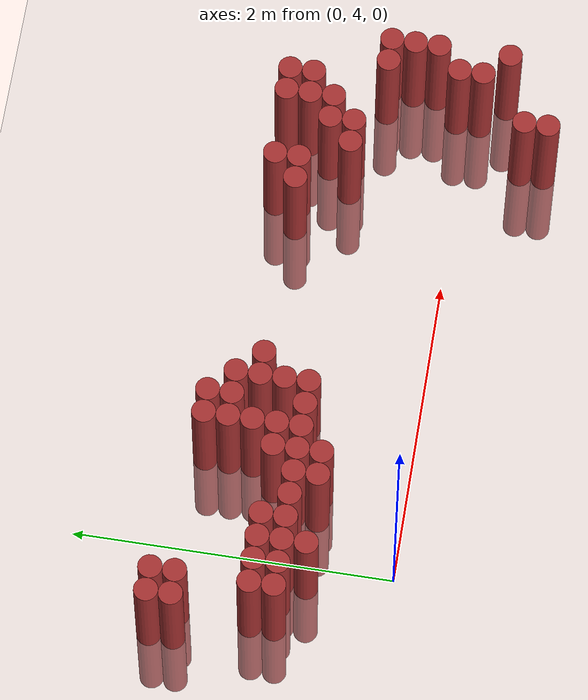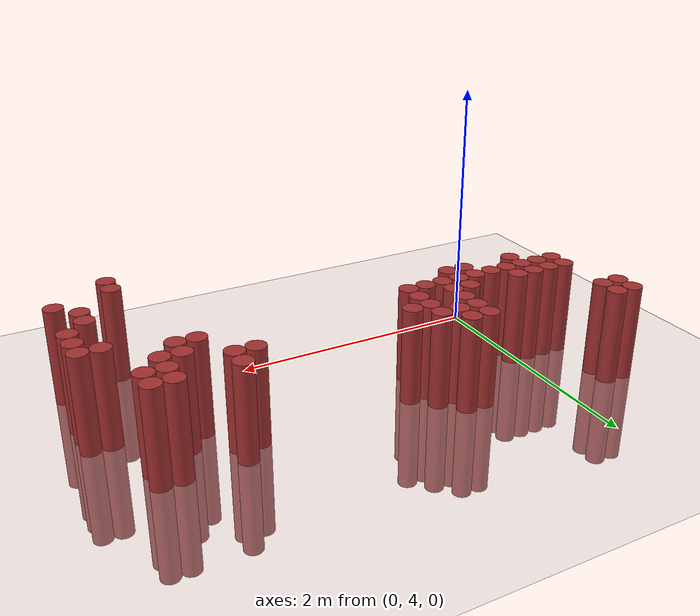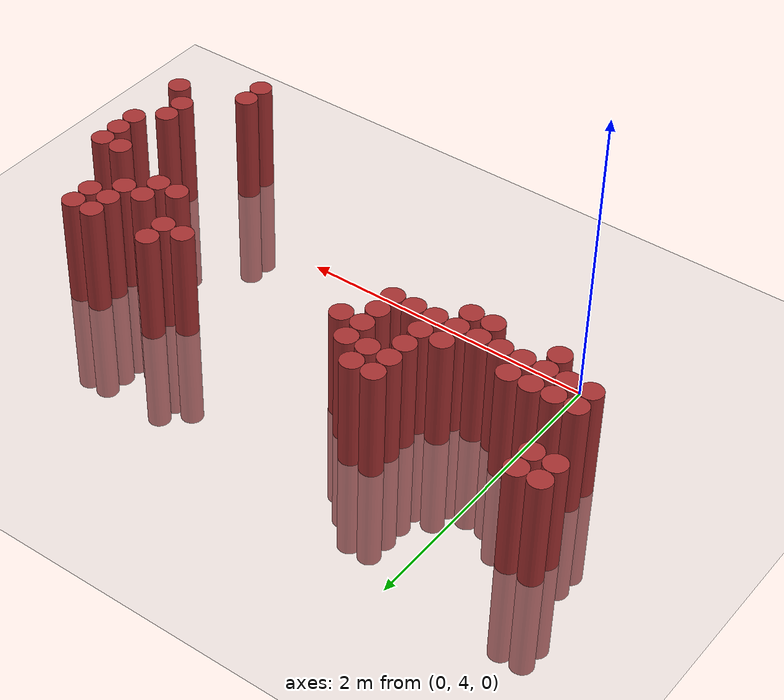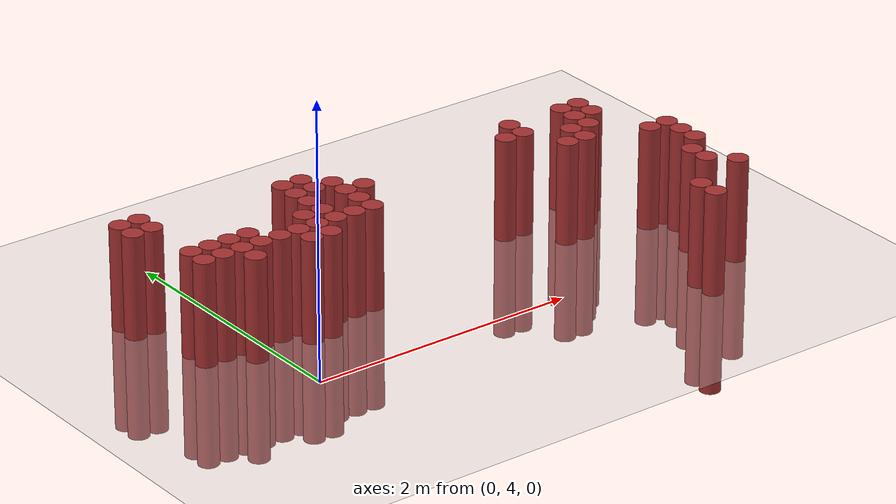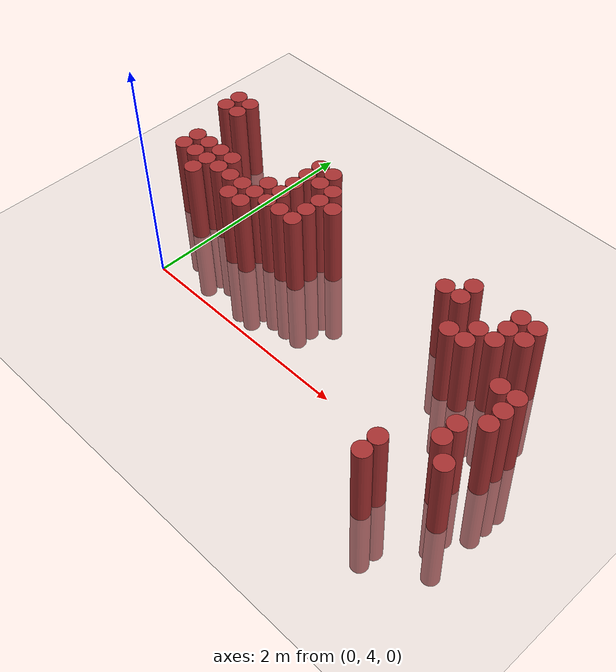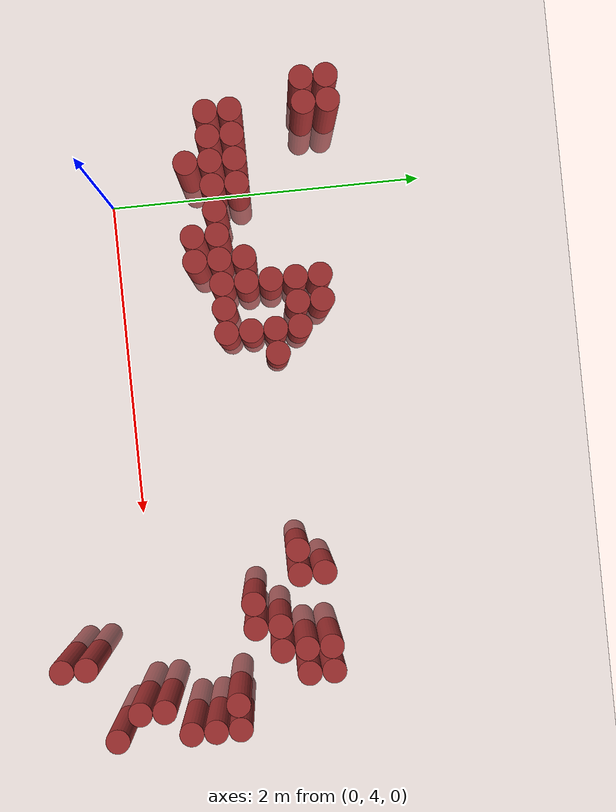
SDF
<sdf version="1.6">
 <world name="default">
  <model name="ground_plane">
   <static>1</static>
   <link name="link">
    <collision name="collision">
     <geometry><plane><normal>0 0 1</normal><size>100 100</size></plane></geometry>
     <surface><friction><ode><mu>100</mu><mu2>50</mu2></ode></friction></surface>
    </collision>
    <visual name="visual">
     <cast_shadows>0</cast_shadows>
     <geometry><plane><normal>0 0 1</normal><size>100 100</size></plane></geometry>
     <material>
      <script><uri>file://media/materials/scripts/gazebo.material</uri><name>Gazebo/Grey</name></script>
     </material>
    </visual>
   </link>
  </model>
  <model name="unit_cylinder_396">
   <static>1</static>
   <pose>-0.575000 5.275000 0.000000 0.000000 0.000000 0.000000</pose>
   <link name="link">
    <inertial>
     <mass>1</mass>
     <inertia><ixx>0.145833</ixx><ixy>0</ixy><ixz>0</ixz><iyy>0.145833</iyy><iyz>0</iyz><izz>0.125</izz></inertia>
    </inertial>
    <collision name="collision">
     <geometry><cylinder><radius>0.075000</radius><length>1.5</length></cylinder></geometry>
    </collision>
    <visual name="visual">
     <geometry><cylinder><radius>0.075000</radius><length>1.5</length></cylinder></geometry>
     <material>
      <ambient>0.648000 0.192000 0.192000 1</ambient>
      <diffuse>0.648000 0.192000 0.192000 1</diffuse>
     </material>
     <material>
      <script><name>Gazebo/Grey</name><uri>file://media/materials/scripts/gazebo.material</uri></script>
     </material>
    </visual>
   </link>
  </model>
  <model name="unit_cylinder_397">
   <static>1</static>
   <pose>-0.575000 5.425000 0.000000 0.000000 0.000000 0.000000</pose>
   <link name="link">
    <inertial>
     <mass>1</mass>
     <inertia><ixx>0.145833</ixx><ixy>0</ixy><ixz>0</ixz><iyy>0.145833</iyy><iyz>0</iyz><izz>0.125</izz></inertia>
    </inertial>
    <collision name="collision">
     <geometry><cylinder><radius>0.075000</radius><length>1.5</length></cylinder></geometry>
    </collision>
    <visual name="visual">
     <geometry><cylinder><radius>0.075000</radius><length>1.5</length></cylinder></geometry>
     <material>
      <ambient>0.648000 0.192000 0.192000 1</ambient>
      <diffuse>0.648000 0.192000 0.192000 1</diffuse>
     </material>
     <material>
      <script><name>Gazebo/Grey</name><uri>file://media/materials/scripts/gazebo.material</uri></script>
     </material>
    </visual>
   </link>
  </model>
  <model name="unit_cylinder_398">
   <static>1</static>
   <pose>-0.425000 4.675000 0.000000 0.000000 0.000000 0.000000</pose>
   <link name="link">
    <inertial>
     <mass>1</mass>
     <inertia><ixx>0.145833</ixx><ixy>0</ixy><ixz>0</ixz><iyy>0.145833</iyy><iyz>0</iyz><izz>0.125</izz></inertia>
    </inertial>
    <collision name="collision">
     <geometry><cylinder><radius>0.075000</radius><length>1.5</length></cylinder></geometry>
    </collision>
    <visual name="visual">
     <geometry><cylinder><radius>0.075000</radius><length>1.5</length></cylinder></geometry>
     <material>
      <ambient>0.648000 0.192000 0.192000 1</ambient>
      <diffuse>0.648000 0.192000 0.192000 1</diffuse>
     </material>
     <material>
      <script><name>Gazebo/Grey</name><uri>file://media/materials/scripts/gazebo.material</uri></script>
     </material>
    </visual>
   </link>
  </model>
  <model name="unit_cylinder_399">
   <static>1</static>
   <pose>-0.425000 4.825000 0.000000 0.000000 0.000000 0.000000</pose>
   <link name="link">
    <inertial>
     <mass>1</mass>
     <inertia><ixx>0.145833</ixx><ixy>0</ixy><ixz>0</ixz><iyy>0.145833</iyy><iyz>0</iyz><izz>0.125</izz></inertia>
    </inertial>
    <collision name="collision">
     <geometry><cylinder><radius>0.075000</radius><length>1.5</length></cylinder></geometry>
    </collision>
    <visual name="visual">
     <geometry><cylinder><radius>0.075000</radius><length>1.5</length></cylinder></geometry>
     <material>
      <ambient>0.648000 0.192000 0.192000 1</ambient>
      <diffuse>0.648000 0.192000 0.192000 1</diffuse>
     </material>
     <material>
      <script><name>Gazebo/Grey</name><uri>file://media/materials/scripts/gazebo.material</uri></script>
     </material>
    </visual>
   </link>
  </model>
  <model name="unit_cylinder_400">
   <static>1</static>
   <pose>-0.425000 5.275000 0.000000 0.000000 0.000000 0.000000</pose>
   <link name="link">
    <inertial>
     <mass>1</mass>
     <inertia><ixx>0.145833</ixx><ixy>0</ixy><ixz>0</ixz><iyy>0.145833</iyy><iyz>0</iyz><izz>0.125</izz></inertia>
    </inertial>
    <collision name="collision">
     <geometry><cylinder><radius>0.075000</radius><length>1.5</length></cylinder></geometry>
    </collision>
    <visual name="visual">
     <geometry><cylinder><radius>0.075000</radius><length>1.5</length></cylinder></geometry>
     <material>
      <ambient>0.648000 0.192000 0.192000 1</ambient>
      <diffuse>0.648000 0.192000 0.192000 1</diffuse>
     </material>
     <material>
      <script><name>Gazebo/Grey</name><uri>file://media/materials/scripts/gazebo.material</uri></script>
     </material>
    </visual>
   </link>
  </model>
  <model name="unit_cylinder_401">
   <static>1</static>
   <pose>-0.425000 5.425000 0.000000 0.000000 0.000000 0.000000</pose>
   <link name="link">
    <inertial>
     <mass>1</mass>
     <inertia><ixx>0.145833</ixx><ixy>0</ixy><ixz>0</ixz><iyy>0.145833</iyy><iyz>0</iyz><izz>0.125</izz></inertia>
    </inertial>
    <collision name="collision">
     <geometry><cylinder><radius>0.075000</radius><length>1.5</length></cylinder></geometry>
    </collision>
    <visual name="visual">
     <geometry><cylinder><radius>0.075000</radius><length>1.5</length></cylinder></geometry>
     <material>
      <ambient>0.648000 0.192000 0.192000 1</ambient>
      <diffuse>0.648000 0.192000 0.192000 1</diffuse>
     </material>
     <material>
      <script><name>Gazebo/Grey</name><uri>file://media/materials/scripts/gazebo.material</uri></script>
     </material>
    </visual>
   </link>
  </model>
  <model name="unit_cylinder_402">
   <static>1</static>
   <pose>-0.275000 4.675000 0.000000 0.000000 0.000000 0.000000</pose>
   <link name="link">
    <inertial>
     <mass>1</mass>
     <inertia><ixx>0.145833</ixx><ixy>0</ixy><ixz>0</ixz><iyy>0.145833</iyy><iyz>0</iyz><izz>0.125</izz></inertia>
    </inertial>
    <collision name="collision">
     <geometry><cylinder><radius>0.075000</radius><length>1.5</length></cylinder></geometry>
    </collision>
    <visual name="visual">
     <geometry><cylinder><radius>0.075000</radius><length>1.5</length></cylinder></geometry>
     <material>
      <ambient>0.648000 0.192000 0.192000 1</ambient>
      <diffuse>0.648000 0.192000 0.192000 1</diffuse>
     </material>
     <material>
      <script><name>Gazebo/Grey</name><uri>file://media/materials/scripts/gazebo.material</uri></script>
     </material>
    </visual>
   </link>
  </model>
  <model name="unit_cylinder_403">
   <static>1</static>
   <pose>-0.275000 4.825000 0.000000 0.000000 0.000000 0.000000</pose>
   <link name="link">
    <inertial>
     <mass>1</mass>
     <inertia><ixx>0.145833</ixx><ixy>0</ixy><ixz>0</ixz><iyy>0.145833</iyy><iyz>0</iyz><izz>0.125</izz></inertia>
    </inertial>
    <collision name="collision">
     <geometry><cylinder><radius>0.075000</radius><length>1.5</length></cylinder></geometry>
    </collision>
    <visual name="visual">
     <geometry><cylinder><radius>0.075000</radius><length>1.5</length></cylinder></geometry>
     <material>
      <ambient>0.648000 0.192000 0.192000 1</ambient>
      <diffuse>0.648000 0.192000 0.192000 1</diffuse>
     </material>
     <material>
      <script><name>Gazebo/Grey</name><uri>file://media/materials/scripts/gazebo.material</uri></script>
     </material>
    </visual>
   </link>
  </model>
  <model name="unit_cylinder_404">
   <static>1</static>
   <pose>-0.125000 4.525000 0.000000 0.000000 0.000000 0.000000</pose>
   <link name="link">
    <inertial>
     <mass>1</mass>
     <inertia><ixx>0.145833</ixx><ixy>0</ixy><ixz>0</ixz><iyy>0.145833</iyy><iyz>0</iyz><izz>0.125</izz></inertia>
    </inertial>
    <collision name="collision">
     <geometry><cylinder><radius>0.075000</radius><length>1.5</length></cylinder></geometry>
    </collision>
    <visual name="visual">
     <geometry><cylinder><radius>0.075000</radius><length>1.5</length></cylinder></geometry>
     <material>
      <ambient>0.648000 0.192000 0.192000 1</ambient>
      <diffuse>0.648000 0.192000 0.192000 1</diffuse>
     </material>
     <material>
      <script><name>Gazebo/Grey</name><uri>file://media/materials/scripts/gazebo.material</uri></script>
     </material>
    </visual>
   </link>
  </model>
  <model name="unit_cylinder_405">
   <static>1</static>
   <pose>-0.125000 4.675000 0.000000 0.000000 0.000000 0.000000</pose>
   <link name="link">
    <inertial>
     <mass>1</mass>
     <inertia><ixx>0.145833</ixx><ixy>0</ixy><ixz>0</ixz><iyy>0.145833</iyy><iyz>0</iyz><izz>0.125</izz></inertia>
    </inertial>
    <collision name="collision">
     <geometry><cylinder><radius>0.075000</radius><length>1.5</length></cylinder></geometry>
    </collision>
    <visual name="visual">
     <geometry><cylinder><radius>0.075000</radius><length>1.5</length></cylinder></geometry>
     <material>
      <ambient>0.648000 0.192000 0.192000 1</ambient>
      <diffuse>0.648000 0.192000 0.192000 1</diffuse>
     </material>
     <material>
      <script><name>Gazebo/Grey</name><uri>file://media/materials/scripts/gazebo.material</uri></script>
     </material>
    </visual>
   </link>
  </model>
  <model name="unit_cylinder_406">
   <static>1</static>
   <pose>-0.125000 4.825000 0.000000 0.000000 0.000000 0.000000</pose>
   <link name="link">
    <inertial>
     <mass>1</mass>
     <inertia><ixx>0.145833</ixx><ixy>0</ixy><ixz>0</ixz><iyy>0.145833</iyy><iyz>0</iyz><izz>0.125</izz></inertia>
    </inertial>
    <collision name="collision">
     <geometry><cylinder><radius>0.075000</radius><length>1.5</length></cylinder></geometry>
    </collision>
    <visual name="visual">
     <geometry><cylinder><radius>0.075000</radius><length>1.5</length></cylinder></geometry>
     <material>
      <ambient>0.648000 0.192000 0.192000 1</ambient>
      <diffuse>0.648000 0.192000 0.192000 1</diffuse>
     </material>
     <material>
      <script><name>Gazebo/Grey</name><uri>file://media/materials/scripts/gazebo.material</uri></script>
     </material>
    </visual>
   </link>
  </model>
  <model name="unit_cylinder_410">
   <static>1</static>
   <pose>0.025000 4.675000 0.000000 0.000000 0.000000 0.000000</pose>
   <link name="link">
    <inertial>
     <mass>1</mass>
     <inertia><ixx>0.145833</ixx><ixy>0</ixy><ixz>0</ixz><iyy>0.145833</iyy><iyz>0</iyz><izz>0.125</izz></inertia>
    </inertial>
    <collision name="collision">
     <geometry><cylinder><radius>0.075000</radius><length>1.5</length></cylinder></geometry>
    </collision>
    <visual name="visual">
     <geometry><cylinder><radius>0.075000</radius><length>1.5</length></cylinder></geometry>
     <material>
      <ambient>0.648000 0.192000 0.192000 1</ambient>
      <diffuse>0.648000 0.192000 0.192000 1</diffuse>
     </material>
     <material>
      <script><name>Gazebo/Grey</name><uri>file://media/materials/scripts/gazebo.material</uri></script>
     </material>
    </visual>
   </link>
  </model>
  <model name="unit_cylinder_411">
   <static>1</static>
   <pose>0.025000 4.825000 0.000000 0.000000 0.000000 0.000000</pose>
   <link name="link">
    <inertial>
     <mass>1</mass>
     <inertia><ixx>0.145833</ixx><ixy>0</ixy><ixz>0</ixz><iyy>0.145833</iyy><iyz>0</iyz><izz>0.125</izz></inertia>
    </inertial>
    <collision name="collision">
     <geometry><cylinder><radius>0.075000</radius><length>1.5</length></cylinder></geometry>
    </collision>
    <visual name="visual">
     <geometry><cylinder><radius>0.075000</radius><length>1.5</length></cylinder></geometry>
     <material>
      <ambient>0.648000 0.192000 0.192000 1</ambient>
      <diffuse>0.648000 0.192000 0.192000 1</diffuse>
     </material>
     <material>
      <script><name>Gazebo/Grey</name><uri>file://media/materials/scripts/gazebo.material</uri></script>
     </material>
    </visual>
   </link>
  </model>
  <model name="unit_cylinder_416">
   <static>1</static>
   <pose>0.175000 4.675000 0.000000 0.000000 0.000000 0.000000</pose>
   <link name="link">
    <inertial>
     <mass>1</mass>
     <inertia><ixx>0.145833</ixx><ixy>0</ixy><ixz>0</ixz><iyy>0.145833</iyy><iyz>0</iyz><izz>0.125</izz></inertia>
    </inertial>
    <collision name="collision">
     <geometry><cylinder><radius>0.075000</radius><length>1.5</length></cylinder></geometry>
    </collision>
    <visual name="visual">
     <geometry><cylinder><radius>0.075000</radius><length>1.5</length></cylinder></geometry>
     <material>
      <ambient>0.648000 0.192000 0.192000 1</ambient>
      <diffuse>0.648000 0.192000 0.192000 1</diffuse>
     </material>
     <material>
      <script><name>Gazebo/Grey</name><uri>file://media/materials/scripts/gazebo.material</uri></script>
     </material>
    </visual>
   </link>
  </model>
  <model name="unit_cylinder_421">
   <static>1</static>
   <pose>0.325000 4.525000 0.000000 0.000000 0.000000 0.000000</pose>
   <link name="link">
    <inertial>
     <mass>1</mass>
     <inertia><ixx>0.145833</ixx><ixy>0</ixy><ixz>0</ixz><iyy>0.145833</iyy><iyz>0</iyz><izz>0.125</izz></inertia>
    </inertial>
    <collision name="collision">
     <geometry><cylinder><radius>0.075000</radius><length>1.5</length></cylinder></geometry>
    </collision>
    <visual name="visual">
     <geometry><cylinder><radius>0.075000</radius><length>1.5</length></cylinder></geometry>
     <material>
      <ambient>0.648000 0.192000 0.192000 1</ambient>
      <diffuse>0.648000 0.192000 0.192000 1</diffuse>
     </material>
     <material>
      <script><name>Gazebo/Grey</name><uri>file://media/materials/scripts/gazebo.material</uri></script>
     </material>
    </visual>
   </link>
  </model>
  <model name="unit_cylinder_422">
   <static>1</static>
   <pose>0.325000 4.675000 0.000000 0.000000 0.000000 0.000000</pose>
   <link name="link">
    <inertial>
     <mass>1</mass>
     <inertia><ixx>0.145833</ixx><ixy>0</ixy><ixz>0</ixz><iyy>0.145833</iyy><iyz>0</iyz><izz>0.125</izz></inertia>
    </inertial>
    <collision name="collision">
     <geometry><cylinder><radius>0.075000</radius><length>1.5</length></cylinder></geometry>
    </collision>
    <visual name="visual">
     <geometry><cylinder><radius>0.075000</radius><length>1.5</length></cylinder></geometry>
     <material>
      <ambient>0.648000 0.192000 0.192000 1</ambient>
      <diffuse>0.648000 0.192000 0.192000 1</diffuse>
     </material>
     <material>
      <script><name>Gazebo/Grey</name><uri>file://media/materials/scripts/gazebo.material</uri></script>
     </material>
    </visual>
   </link>
  </model>
  <model name="unit_cylinder_429">
   <static>1</static>
   <pose>0.475000 4.525000 0.000000 0.000000 0.000000 0.000000</pose>
   <link name="link">
    <inertial>
     <mass>1</mass>
     <inertia><ixx>0.145833</ixx><ixy>0</ixy><ixz>0</ixz><iyy>0.145833</iyy><iyz>0</iyz><izz>0.125</izz></inertia>
    </inertial>
    <collision name="collision">
     <geometry><cylinder><radius>0.075000</radius><length>1.5</length></cylinder></geometry>
    </collision>
    <visual name="visual">
     <geometry><cylinder><radius>0.075000</radius><length>1.5</length></cylinder></geometry>
     <material>
      <ambient>0.648000 0.192000 0.192000 1</ambient>
      <diffuse>0.648000 0.192000 0.192000 1</diffuse>
     </material>
     <material>
      <script><name>Gazebo/Grey</name><uri>file://media/materials/scripts/gazebo.material</uri></script>
     </material>
    </visual>
   </link>
  </model>
  <model name="unit_cylinder_430">
   <static>1</static>
   <pose>0.475000 4.675000 0.000000 0.000000 0.000000 0.000000</pose>
   <link name="link">
    <inertial>
     <mass>1</mass>
     <inertia><ixx>0.145833</ixx><ixy>0</ixy><ixz>0</ixz><iyy>0.145833</iyy><iyz>0</iyz><izz>0.125</izz></inertia>
    </inertial>
    <collision name="collision">
     <geometry><cylinder><radius>0.075000</radius><length>1.5</length></cylinder></geometry>
    </collision>
    <visual name="visual">
     <geometry><cylinder><radius>0.075000</radius><length>1.5</length></cylinder></geometry>
     <material>
      <ambient>0.648000 0.192000 0.192000 1</ambient>
      <diffuse>0.648000 0.192000 0.192000 1</diffuse>
     </material>
     <material>
      <script><name>Gazebo/Grey</name><uri>file://media/materials/scripts/gazebo.material</uri></script>
     </material>
    </visual>
   </link>
  </model>
  <model name="unit_cylinder_431">
   <static>1</static>
   <pose>0.475000 4.825000 0.000000 0.000000 0.000000 0.000000</pose>
   <link name="link">
    <inertial>
     <mass>1</mass>
     <inertia><ixx>0.145833</ixx><ixy>0</ixy><ixz>0</ixz><iyy>0.145833</iyy><iyz>0</iyz><izz>0.125</izz></inertia>
    </inertial>
    <collision name="collision">
     <geometry><cylinder><radius>0.075000</radius><length>1.5</length></cylinder></geometry>
    </collision>
    <visual name="visual">
     <geometry><cylinder><radius>0.075000</radius><length>1.5</length></cylinder></geometry>
     <material>
      <ambient>0.648000 0.192000 0.192000 1</ambient>
      <diffuse>0.648000 0.192000 0.192000 1</diffuse>
     </material>
     <material>
      <script><name>Gazebo/Grey</name><uri>file://media/materials/scripts/gazebo.material</uri></script>
     </material>
    </visual>
   </link>
  </model>
  <model name="unit_cylinder_438">
   <static>1</static>
   <pose>0.625000 4.675000 0.000000 0.000000 0.000000 0.000000</pose>
   <link name="link">
    <inertial>
     <mass>1</mass>
     <inertia><ixx>0.145833</ixx><ixy>0</ixy><ixz>0</ixz><iyy>0.145833</iyy><iyz>0</iyz><izz>0.125</izz></inertia>
    </inertial>
    <collision name="collision">
     <geometry><cylinder><radius>0.075000</radius><length>1.5</length></cylinder></geometry>
    </collision>
    <visual name="visual">
     <geometry><cylinder><radius>0.075000</radius><length>1.5</length></cylinder></geometry>
     <material>
      <ambient>0.648000 0.192000 0.192000 1</ambient>
      <diffuse>0.648000 0.192000 0.192000 1</diffuse>
     </material>
     <material>
      <script><name>Gazebo/Grey</name><uri>file://media/materials/scripts/gazebo.material</uri></script>
     </material>
    </visual>
   </link>
  </model>
  <model name="unit_cylinder_439">
   <static>1</static>
   <pose>0.625000 4.825000 0.000000 0.000000 0.000000 0.000000</pose>
   <link name="link">
    <inertial>
     <mass>1</mass>
     <inertia><ixx>0.145833</ixx><ixy>0</ixy><ixz>0</ixz><iyy>0.145833</iyy><iyz>0</iyz><izz>0.125</izz></inertia>
    </inertial>
    <collision name="collision">
     <geometry><cylinder><radius>0.075000</radius><length>1.5</length></cylinder></geometry>
    </collision>
    <visual name="visual">
     <geometry><cylinder><radius>0.075000</radius><length>1.5</length></cylinder></geometry>
     <material>
      <ambient>0.648000 0.192000 0.192000 1</ambient>
      <diffuse>0.648000 0.192000 0.192000 1</diffuse>
     </material>
     <material>
      <script><name>Gazebo/Grey</name><uri>file://media/materials/scripts/gazebo.material</uri></script>
     </material>
    </visual>
   </link>
  </model>
  <model name="unit_cylinder_440">
   <static>1</static>
   <pose>0.625000 4.975000 0.000000 0.000000 0.000000 0.000000</pose>
   <link name="link">
    <inertial>
     <mass>1</mass>
     <inertia><ixx>0.145833</ixx><ixy>0</ixy><ixz>0</ixz><iyy>0.145833</iyy><iyz>0</iyz><izz>0.125</izz></inertia>
    </inertial>
    <collision name="collision">
     <geometry><cylinder><radius>0.075000</radius><length>1.5</length></cylinder></geometry>
    </collision>
    <visual name="visual">
     <geometry><cylinder><radius>0.075000</radius><length>1.5</length></cylinder></geometry>
     <material>
      <ambient>0.648000 0.192000 0.192000 1</ambient>
      <diffuse>0.648000 0.192000 0.192000 1</diffuse>
     </material>
     <material>
      <script><name>Gazebo/Grey</name><uri>file://media/materials/scripts/gazebo.material</uri></script>
     </material>
    </visual>
   </link>
  </model>
  <model name="unit_cylinder_441">
   <static>1</static>
   <pose>0.625000 5.125000 0.000000 0.000000 0.000000 0.000000</pose>
   <link name="link">
    <inertial>
     <mass>1</mass>
     <inertia><ixx>0.145833</ixx><ixy>0</ixy><ixz>0</ixz><iyy>0.145833</iyy><iyz>0</iyz><izz>0.125</izz></inertia>
    </inertial>
    <collision name="collision">
     <geometry><cylinder><radius>0.075000</radius><length>1.5</length></cylinder></geometry>
    </collision>
    <visual name="visual">
     <geometry><cylinder><radius>0.075000</radius><length>1.5</length></cylinder></geometry>
     <material>
      <ambient>0.648000 0.192000 0.192000 1</ambient>
      <diffuse>0.648000 0.192000 0.192000 1</diffuse>
     </material>
     <material>
      <script><name>Gazebo/Grey</name><uri>file://media/materials/scripts/gazebo.material</uri></script>
     </material>
    </visual>
   </link>
  </model>
  <model name="unit_cylinder_442">
   <static>1</static>
   <pose>0.625000 5.275000 0.000000 0.000000 0.000000 0.000000</pose>
   <link name="link">
    <inertial>
     <mass>1</mass>
     <inertia><ixx>0.145833</ixx><ixy>0</ixy><ixz>0</ixz><iyy>0.145833</iyy><iyz>0</iyz><izz>0.125</izz></inertia>
    </inertial>
    <collision name="collision">
     <geometry><cylinder><radius>0.075000</radius><length>1.5</length></cylinder></geometry>
    </collision>
    <visual name="visual">
     <geometry><cylinder><radius>0.075000</radius><length>1.5</length></cylinder></geometry>
     <material>
      <ambient>0.648000 0.192000 0.192000 1</ambient>
      <diffuse>0.648000 0.192000 0.192000 1</diffuse>
     </material>
     <material>
      <script><name>Gazebo/Grey</name><uri>file://media/materials/scripts/gazebo.material</uri></script>
     </material>
    </visual>
   </link>
  </model>
  <model name="unit_cylinder_445">
   <static>1</static>
   <pose>0.775000 4.675000 0.000000 0.000000 0.000000 0.000000</pose>
   <link name="link">
    <inertial>
     <mass>1</mass>
     <inertia><ixx>0.145833</ixx><ixy>0</ixy><ixz>0</ixz><iyy>0.145833</iyy><iyz>0</iyz><izz>0.125</izz></inertia>
    </inertial>
    <collision name="collision">
     <geometry><cylinder><radius>0.075000</radius><length>1.5</length></cylinder></geometry>
    </collision>
    <visual name="visual">
     <geometry><cylinder><radius>0.075000</radius><length>1.5</length></cylinder></geometry>
     <material>
      <ambient>0.648000 0.192000 0.192000 1</ambient>
      <diffuse>0.648000 0.192000 0.192000 1</diffuse>
     </material>
     <material>
      <script><name>Gazebo/Grey</name><uri>file://media/materials/scripts/gazebo.material</uri></script>
     </material>
    </visual>
   </link>
  </model>
  <model name="unit_cylinder_446">
   <static>1</static>
   <pose>0.775000 5.125000 0.000000 0.000000 0.000000 0.000000</pose>
   <link name="link">
    <inertial>
     <mass>1</mass>
     <inertia><ixx>0.145833</ixx><ixy>0</ixy><ixz>0</ixz><iyy>0.145833</iyy><iyz>0</iyz><izz>0.125</izz></inertia>
    </inertial>
    <collision name="collision">
     <geometry><cylinder><radius>0.075000</radius><length>1.5</length></cylinder></geometry>
    </collision>
    <visual name="visual">
     <geometry><cylinder><radius>0.075000</radius><length>1.5</length></cylinder></geometry>
     <material>
      <ambient>0.648000 0.192000 0.192000 1</ambient>
      <diffuse>0.648000 0.192000 0.192000 1</diffuse>
     </material>
     <material>
      <script><name>Gazebo/Grey</name><uri>file://media/materials/scripts/gazebo.material</uri></script>
     </material>
    </visual>
   </link>
  </model>
  <model name="unit_cylinder_447">
   <static>1</static>
   <pose>0.775000 5.275000 0.000000 0.000000 0.000000 0.000000</pose>
   <link name="link">
    <inertial>
     <mass>1</mass>
     <inertia><ixx>0.145833</ixx><ixy>0</ixy><ixz>0</ixz><iyy>0.145833</iyy><iyz>0</iyz><izz>0.125</izz></inertia>
    </inertial>
    <collision name="collision">
     <geometry><cylinder><radius>0.075000</radius><length>1.5</length></cylinder></geometry>
    </collision>
    <visual name="visual">
     <geometry><cylinder><radius>0.075000</radius><length>1.5</length></cylinder></geometry>
     <material>
      <ambient>0.648000 0.192000 0.192000 1</ambient>
      <diffuse>0.648000 0.192000 0.192000 1</diffuse>
     </material>
     <material>
      <script><name>Gazebo/Grey</name><uri>file://media/materials/scripts/gazebo.material</uri></script>
     </material>
    </visual>
   </link>
  </model>
  <model name="unit_cylinder_458">
   <static>1</static>
   <pose>0.925000 4.675000 0.000000 0.000000 0.000000 0.000000</pose>
   <link name="link">
    <inertial>
     <mass>1</mass>
     <inertia><ixx>0.145833</ixx><ixy>0</ixy><ixz>0</ixz><iyy>0.145833</iyy><iyz>0</iyz><izz>0.125</izz></inertia>
    </inertial>
    <collision name="collision">
     <geometry><cylinder><radius>0.075000</radius><length>1.5</length></cylinder></geometry>
    </collision>
    <visual name="visual">
     <geometry><cylinder><radius>0.075000</radius><length>1.5</length></cylinder></geometry>
     <material>
      <ambient>0.648000 0.192000 0.192000 1</ambient>
      <diffuse>0.648000 0.192000 0.192000 1</diffuse>
     </material>
     <material>
      <script><name>Gazebo/Grey</name><uri>file://media/materials/scripts/gazebo.material</uri></script>
     </material>
    </visual>
   </link>
  </model>
  <model name="unit_cylinder_459">
   <static>1</static>
   <pose>0.925000 4.825000 0.000000 0.000000 0.000000 0.000000</pose>
   <link name="link">
    <inertial>
     <mass>1</mass>
     <inertia><ixx>0.145833</ixx><ixy>0</ixy><ixz>0</ixz><iyy>0.145833</iyy><iyz>0</iyz><izz>0.125</izz></inertia>
    </inertial>
    <collision name="collision">
     <geometry><cylinder><radius>0.075000</radius><length>1.5</length></cylinder></geometry>
    </collision>
    <visual name="visual">
     <geometry><cylinder><radius>0.075000</radius><length>1.5</length></cylinder></geometry>
     <material>
      <ambient>0.648000 0.192000 0.192000 1</ambient>
      <diffuse>0.648000 0.192000 0.192000 1</diffuse>
     </material>
     <material>
      <script><name>Gazebo/Grey</name><uri>file://media/materials/scripts/gazebo.material</uri></script>
     </material>
    </visual>
   </link>
  </model>
  <model name="unit_cylinder_460">
   <static>1</static>
   <pose>0.925000 4.975000 0.000000 0.000000 0.000000 0.000000</pose>
   <link name="link">
    <inertial>
     <mass>1</mass>
     <inertia><ixx>0.145833</ixx><ixy>0</ixy><ixz>0</ixz><iyy>0.145833</iyy><iyz>0</iyz><izz>0.125</izz></inertia>
    </inertial>
    <collision name="collision">
     <geometry><cylinder><radius>0.075000</radius><length>1.5</length></cylinder></geometry>
    </collision>
    <visual name="visual">
     <geometry><cylinder><radius>0.075000</radius><length>1.5</length></cylinder></geometry>
     <material>
      <ambient>0.648000 0.192000 0.192000 1</ambient>
      <diffuse>0.648000 0.192000 0.192000 1</diffuse>
     </material>
     <material>
      <script><name>Gazebo/Grey</name><uri>file://media/materials/scripts/gazebo.material</uri></script>
     </material>
    </visual>
   </link>
  </model>
  <model name="unit_cylinder_461">
   <static>1</static>
   <pose>0.925000 5.125000 0.000000 0.000000 0.000000 0.000000</pose>
   <link name="link">
    <inertial>
     <mass>1</mass>
     <inertia><ixx>0.145833</ixx><ixy>0</ixy><ixz>0</ixz><iyy>0.145833</iyy><iyz>0</iyz><izz>0.125</izz></inertia>
    </inertial>
    <collision name="collision">
     <geometry><cylinder><radius>0.075000</radius><length>1.5</length></cylinder></geometry>
    </collision>
    <visual name="visual">
     <geometry><cylinder><radius>0.075000</radius><length>1.5</length></cylinder></geometry>
     <material>
      <ambient>0.648000 0.192000 0.192000 1</ambient>
      <diffuse>0.648000 0.192000 0.192000 1</diffuse>
     </material>
     <material>
      <script><name>Gazebo/Grey</name><uri>file://media/materials/scripts/gazebo.material</uri></script>
     </material>
    </visual>
   </link>
  </model>
  <model name="unit_cylinder_471">
   <static>1</static>
   <pose>1.075000 4.975000 0.000000 0.000000 0.000000 0.000000</pose>
   <link name="link">
    <inertial>
     <mass>1</mass>
     <inertia><ixx>0.145833</ixx><ixy>0</ixy><ixz>0</ixz><iyy>0.145833</iyy><iyz>0</iyz><izz>0.125</izz></inertia>
    </inertial>
    <collision name="collision">
     <geometry><cylinder><radius>0.075000</radius><length>1.5</length></cylinder></geometry>
    </collision>
    <visual name="visual">
     <geometry><cylinder><radius>0.075000</radius><length>1.5</length></cylinder></geometry>
     <material>
      <ambient>0.648000 0.192000 0.192000 1</ambient>
      <diffuse>0.648000 0.192000 0.192000 1</diffuse>
     </material>
     <material>
      <script><name>Gazebo/Grey</name><uri>file://media/materials/scripts/gazebo.material</uri></script>
     </material>
    </visual>
   </link>
  </model>
  <model name="unit_cylinder_511">
   <static>1</static>
   <pose>2.275000 4.975000 0.000000 0.000000 0.000000 0.000000</pose>
   <link name="link">
    <inertial>
     <mass>1</mass>
     <inertia><ixx>0.145833</ixx><ixy>0</ixy><ixz>0</ixz><iyy>0.145833</iyy><iyz>0</iyz><izz>0.125</izz></inertia>
    </inertial>
    <collision name="collision">
     <geometry><cylinder><radius>0.075000</radius><length>1.5</length></cylinder></geometry>
    </collision>
    <visual name="visual">
     <geometry><cylinder><radius>0.075000</radius><length>1.5</length></cylinder></geometry>
     <material>
      <ambient>0.648000 0.192000 0.192000 1</ambient>
      <diffuse>0.648000 0.192000 0.192000 1</diffuse>
     </material>
     <material>
      <script><name>Gazebo/Grey</name><uri>file://media/materials/scripts/gazebo.material</uri></script>
     </material>
    </visual>
   </link>
  </model>
  <model name="unit_cylinder_515">
   <static>1</static>
   <pose>2.425000 4.975000 0.000000 0.000000 0.000000 0.000000</pose>
   <link name="link">
    <inertial>
     <mass>1</mass>
     <inertia><ixx>0.145833</ixx><ixy>0</ixy><ixz>0</ixz><iyy>0.145833</iyy><iyz>0</iyz><izz>0.125</izz></inertia>
    </inertial>
    <collision name="collision">
     <geometry><cylinder><radius>0.075000</radius><length>1.5</length></cylinder></geometry>
    </collision>
    <visual name="visual">
     <geometry><cylinder><radius>0.075000</radius><length>1.5</length></cylinder></geometry>
     <material>
      <ambient>0.648000 0.192000 0.192000 1</ambient>
      <diffuse>0.648000 0.192000 0.192000 1</diffuse>
     </material>
     <material>
      <script><name>Gazebo/Grey</name><uri>file://media/materials/scripts/gazebo.material</uri></script>
     </material>
    </visual>
   </link>
  </model>
  <model name="unit_cylinder_516">
   <static>1</static>
   <pose>2.425000 5.125000 0.000000 0.000000 0.000000 0.000000</pose>
   <link name="link">
    <inertial>
     <mass>1</mass>
     <inertia><ixx>0.145833</ixx><ixy>0</ixy><ixz>0</ixz><iyy>0.145833</iyy><iyz>0</iyz><izz>0.125</izz></inertia>
    </inertial>
    <collision name="collision">
     <geometry><cylinder><radius>0.075000</radius><length>1.5</length></cylinder></geometry>
    </collision>
    <visual name="visual">
     <geometry><cylinder><radius>0.075000</radius><length>1.5</length></cylinder></geometry>
     <material>
      <ambient>0.648000 0.192000 0.192000 1</ambient>
      <diffuse>0.648000 0.192000 0.192000 1</diffuse>
     </material>
     <material>
      <script><name>Gazebo/Grey</name><uri>file://media/materials/scripts/gazebo.material</uri></script>
     </material>
    </visual>
   </link>
  </model>
  <model name="unit_cylinder_522">
   <static>1</static>
   <pose>2.575000 4.675000 0.000000 0.000000 0.000000 0.000000</pose>
   <link name="link">
    <inertial>
     <mass>1</mass>
     <inertia><ixx>0.145833</ixx><ixy>0</ixy><ixz>0</ixz><iyy>0.145833</iyy><iyz>0</iyz><izz>0.125</izz></inertia>
    </inertial>
    <collision name="collision">
     <geometry><cylinder><radius>0.075000</radius><length>1.5</length></cylinder></geometry>
    </collision>
    <visual name="visual">
     <geometry><cylinder><radius>0.075000</radius><length>1.5</length></cylinder></geometry>
     <material>
      <ambient>0.648000 0.192000 0.192000 1</ambient>
      <diffuse>0.648000 0.192000 0.192000 1</diffuse>
     </material>
     <material>
      <script><name>Gazebo/Grey</name><uri>file://media/materials/scripts/gazebo.material</uri></script>
     </material>
    </visual>
   </link>
  </model>
  <model name="unit_cylinder_532">
   <static>1</static>
   <pose>2.725000 4.675000 0.000000 0.000000 0.000000 0.000000</pose>
   <link name="link">
    <inertial>
     <mass>1</mass>
     <inertia><ixx>0.145833</ixx><ixy>0</ixy><ixz>0</ixz><iyy>0.145833</iyy><iyz>0</iyz><izz>0.125</izz></inertia>
    </inertial>
    <collision name="collision">
     <geometry><cylinder><radius>0.075000</radius><length>1.5</length></cylinder></geometry>
    </collision>
    <visual name="visual">
     <geometry><cylinder><radius>0.075000</radius><length>1.5</length></cylinder></geometry>
     <material>
      <ambient>0.648000 0.192000 0.192000 1</ambient>
      <diffuse>0.648000 0.192000 0.192000 1</diffuse>
     </material>
     <material>
      <script><name>Gazebo/Grey</name><uri>file://media/materials/scripts/gazebo.material</uri></script>
     </material>
    </visual>
   </link>
  </model>
  <model name="unit_cylinder_533">
   <static>1</static>
   <pose>2.725000 4.825000 0.000000 0.000000 0.000000 0.000000</pose>
   <link name="link">
    <inertial>
     <mass>1</mass>
     <inertia><ixx>0.145833</ixx><ixy>0</ixy><ixz>0</ixz><iyy>0.145833</iyy><iyz>0</iyz><izz>0.125</izz></inertia>
    </inertial>
    <collision name="collision">
     <geometry><cylinder><radius>0.075000</radius><length>1.5</length></cylinder></geometry>
    </collision>
    <visual name="visual">
     <geometry><cylinder><radius>0.075000</radius><length>1.5</length></cylinder></geometry>
     <material>
      <ambient>0.648000 0.192000 0.192000 1</ambient>
      <diffuse>0.648000 0.192000 0.192000 1</diffuse>
     </material>
     <material>
      <script><name>Gazebo/Grey</name><uri>file://media/materials/scripts/gazebo.material</uri></script>
     </material>
    </visual>
   </link>
  </model>
  <model name="unit_cylinder_544">
   <static>1</static>
   <pose>2.875000 3.475000 0.000000 0.000000 0.000000 0.000000</pose>
   <link name="link">
    <inertial>
     <mass>1</mass>
     <inertia><ixx>0.145833</ixx><ixy>0</ixy><ixz>0</ixz><iyy>0.145833</iyy><iyz>0</iyz><izz>0.125</izz></inertia>
    </inertial>
    <collision name="collision">
     <geometry><cylinder><radius>0.075000</radius><length>1.5</length></cylinder></geometry>
    </collision>
    <visual name="visual">
     <geometry><cylinder><radius>0.075000</radius><length>1.5</length></cylinder></geometry>
     <material>
      <ambient>0.648000 0.192000 0.192000 1</ambient>
      <diffuse>0.648000 0.192000 0.192000 1</diffuse>
     </material>
     <material>
      <script><name>Gazebo/Grey</name><uri>file://media/materials/scripts/gazebo.material</uri></script>
     </material>
    </visual>
   </link>
  </model>
  <model name="unit_cylinder_545">
   <static>1</static>
   <pose>2.875000 3.625000 0.000000 0.000000 0.000000 0.000000</pose>
   <link name="link">
    <inertial>
     <mass>1</mass>
     <inertia><ixx>0.145833</ixx><ixy>0</ixy><ixz>0</ixz><iyy>0.145833</iyy><iyz>0</iyz><izz>0.125</izz></inertia>
    </inertial>
    <collision name="collision">
     <geometry><cylinder><radius>0.075000</radius><length>1.5</length></cylinder></geometry>
    </collision>
    <visual name="visual">
     <geometry><cylinder><radius>0.075000</radius><length>1.5</length></cylinder></geometry>
     <material>
      <ambient>0.648000 0.192000 0.192000 1</ambient>
      <diffuse>0.648000 0.192000 0.192000 1</diffuse>
     </material>
     <material>
      <script><name>Gazebo/Grey</name><uri>file://media/materials/scripts/gazebo.material</uri></script>
     </material>
    </visual>
   </link>
  </model>
  <model name="unit_cylinder_546">
   <static>1</static>
   <pose>2.875000 4.825000 0.000000 0.000000 0.000000 0.000000</pose>
   <link name="link">
    <inertial>
     <mass>1</mass>
     <inertia><ixx>0.145833</ixx><ixy>0</ixy><ixz>0</ixz><iyy>0.145833</iyy><iyz>0</iyz><izz>0.125</izz></inertia>
    </inertial>
    <collision name="collision">
     <geometry><cylinder><radius>0.075000</radius><length>1.5</length></cylinder></geometry>
    </collision>
    <visual name="visual">
     <geometry><cylinder><radius>0.075000</radius><length>1.5</length></cylinder></geometry>
     <material>
      <ambient>0.648000 0.192000 0.192000 1</ambient>
      <diffuse>0.648000 0.192000 0.192000 1</diffuse>
     </material>
     <material>
      <script><name>Gazebo/Grey</name><uri>file://media/materials/scripts/gazebo.material</uri></script>
     </material>
    </visual>
   </link>
  </model>
  <model name="unit_cylinder_547">
   <static>1</static>
   <pose>2.875000 4.975000 0.000000 0.000000 0.000000 0.000000</pose>
   <link name="link">
    <inertial>
     <mass>1</mass>
     <inertia><ixx>0.145833</ixx><ixy>0</ixy><ixz>0</ixz><iyy>0.145833</iyy><iyz>0</iyz><izz>0.125</izz></inertia>
    </inertial>
    <collision name="collision">
     <geometry><cylinder><radius>0.075000</radius><length>1.5</length></cylinder></geometry>
    </collision>
    <visual name="visual">
     <geometry><cylinder><radius>0.075000</radius><length>1.5</length></cylinder></geometry>
     <material>
      <ambient>0.648000 0.192000 0.192000 1</ambient>
      <diffuse>0.648000 0.192000 0.192000 1</diffuse>
     </material>
     <material>
      <script><name>Gazebo/Grey</name><uri>file://media/materials/scripts/gazebo.material</uri></script>
     </material>
    </visual>
   </link>
  </model>
  <model name="unit_cylinder_548">
   <static>1</static>
   <pose>2.875000 5.125000 0.000000 0.000000 0.000000 0.000000</pose>
   <link name="link">
    <inertial>
     <mass>1</mass>
     <inertia><ixx>0.145833</ixx><ixy>0</ixy><ixz>0</ixz><iyy>0.145833</iyy><iyz>0</iyz><izz>0.125</izz></inertia>
    </inertial>
    <collision name="collision">
     <geometry><cylinder><radius>0.075000</radius><length>1.5</length></cylinder></geometry>
    </collision>
    <visual name="visual">
     <geometry><cylinder><radius>0.075000</radius><length>1.5</length></cylinder></geometry>
     <material>
      <ambient>0.648000 0.192000 0.192000 1</ambient>
      <diffuse>0.648000 0.192000 0.192000 1</diffuse>
     </material>
     <material>
      <script><name>Gazebo/Grey</name><uri>file://media/materials/scripts/gazebo.material</uri></script>
     </material>
    </visual>
   </link>
  </model>
  <model name="unit_cylinder_558">
   <static>1</static>
   <pose>3.025000 4.975000 0.000000 0.000000 0.000000 0.000000</pose>
   <link name="link">
    <inertial>
     <mass>1</mass>
     <inertia><ixx>0.145833</ixx><ixy>0</ixy><ixz>0</ixz><iyy>0.145833</iyy><iyz>0</iyz><izz>0.125</izz></inertia>
    </inertial>
    <collision name="collision">
     <geometry><cylinder><radius>0.075000</radius><length>1.5</length></cylinder></geometry>
    </collision>
    <visual name="visual">
     <geometry><cylinder><radius>0.075000</radius><length>1.5</length></cylinder></geometry>
     <material>
      <ambient>0.648000 0.192000 0.192000 1</ambient>
      <diffuse>0.648000 0.192000 0.192000 1</diffuse>
     </material>
     <material>
      <script><name>Gazebo/Grey</name><uri>file://media/materials/scripts/gazebo.material</uri></script>
     </material>
    </visual>
   </link>
  </model>
  <model name="unit_cylinder_559">
   <static>1</static>
   <pose>3.025000 5.125000 0.000000 0.000000 0.000000 0.000000</pose>
   <link name="link">
    <inertial>
     <mass>1</mass>
     <inertia><ixx>0.145833</ixx><ixy>0</ixy><ixz>0</ixz><iyy>0.145833</iyy><iyz>0</iyz><izz>0.125</izz></inertia>
    </inertial>
    <collision name="collision">
     <geometry><cylinder><radius>0.075000</radius><length>1.5</length></cylinder></geometry>
    </collision>
    <visual name="visual">
     <geometry><cylinder><radius>0.075000</radius><length>1.5</length></cylinder></geometry>
     <material>
      <ambient>0.648000 0.192000 0.192000 1</ambient>
      <diffuse>0.648000 0.192000 0.192000 1</diffuse>
     </material>
     <material>
      <script><name>Gazebo/Grey</name><uri>file://media/materials/scripts/gazebo.material</uri></script>
     </material>
    </visual>
   </link>
  </model>
  <model name="unit_cylinder_569">
   <static>1</static>
   <pose>3.175000 3.925000 0.000000 0.000000 0.000000 0.000000</pose>
   <link name="link">
    <inertial>
     <mass>1</mass>
     <inertia><ixx>0.145833</ixx><ixy>0</ixy><ixz>0</ixz><iyy>0.145833</iyy><iyz>0</iyz><izz>0.125</izz></inertia>
    </inertial>
    <collision name="collision">
     <geometry><cylinder><radius>0.075000</radius><length>1.5</length></cylinder></geometry>
    </collision>
    <visual name="visual">
     <geometry><cylinder><radius>0.075000</radius><length>1.5</length></cylinder></geometry>
     <material>
      <ambient>0.648000 0.192000 0.192000 1</ambient>
      <diffuse>0.648000 0.192000 0.192000 1</diffuse>
     </material>
     <material>
      <script><name>Gazebo/Grey</name><uri>file://media/materials/scripts/gazebo.material</uri></script>
     </material>
    </visual>
   </link>
  </model>
  <model name="unit_cylinder_570">
   <static>1</static>
   <pose>3.175000 4.075000 0.000000 0.000000 0.000000 0.000000</pose>
   <link name="link">
    <inertial>
     <mass>1</mass>
     <inertia><ixx>0.145833</ixx><ixy>0</ixy><ixz>0</ixz><iyy>0.145833</iyy><iyz>0</iyz><izz>0.125</izz></inertia>
    </inertial>
    <collision name="collision">
     <geometry><cylinder><radius>0.075000</radius><length>1.5</length></cylinder></geometry>
    </collision>
    <visual name="visual">
     <geometry><cylinder><radius>0.075000</radius><length>1.5</length></cylinder></geometry>
     <material>
      <ambient>0.648000 0.192000 0.192000 1</ambient>
      <diffuse>0.648000 0.192000 0.192000 1</diffuse>
     </material>
     <material>
      <script><name>Gazebo/Grey</name><uri>file://media/materials/scripts/gazebo.material</uri></script>
     </material>
    </visual>
   </link>
  </model>
  <model name="unit_cylinder_571">
   <static>1</static>
   <pose>3.175000 4.525000 0.000000 0.000000 0.000000 0.000000</pose>
   <link name="link">
    <inertial>
     <mass>1</mass>
     <inertia><ixx>0.145833</ixx><ixy>0</ixy><ixz>0</ixz><iyy>0.145833</iyy><iyz>0</iyz><izz>0.125</izz></inertia>
    </inertial>
    <collision name="collision">
     <geometry><cylinder><radius>0.075000</radius><length>1.5</length></cylinder></geometry>
    </collision>
    <visual name="visual">
     <geometry><cylinder><radius>0.075000</radius><length>1.5</length></cylinder></geometry>
     <material>
      <ambient>0.648000 0.192000 0.192000 1</ambient>
      <diffuse>0.648000 0.192000 0.192000 1</diffuse>
     </material>
     <material>
      <script><name>Gazebo/Grey</name><uri>file://media/materials/scripts/gazebo.material</uri></script>
     </material>
    </visual>
   </link>
  </model>
  <model name="unit_cylinder_579">
   <static>1</static>
   <pose>3.325000 3.775000 0.000000 0.000000 0.000000 0.000000</pose>
   <link name="link">
    <inertial>
     <mass>1</mass>
     <inertia><ixx>0.145833</ixx><ixy>0</ixy><ixz>0</ixz><iyy>0.145833</iyy><iyz>0</iyz><izz>0.125</izz></inertia>
    </inertial>
    <collision name="collision">
     <geometry><cylinder><radius>0.075000</radius><length>1.5</length></cylinder></geometry>
    </collision>
    <visual name="visual">
     <geometry><cylinder><radius>0.075000</radius><length>1.5</length></cylinder></geometry>
     <material>
      <ambient>0.648000 0.192000 0.192000 1</ambient>
      <diffuse>0.648000 0.192000 0.192000 1</diffuse>
     </material>
     <material>
      <script><name>Gazebo/Grey</name><uri>file://media/materials/scripts/gazebo.material</uri></script>
     </material>
    </visual>
   </link>
  </model>
  <model name="unit_cylinder_580">
   <static>1</static>
   <pose>3.325000 4.225000 0.000000 0.000000 0.000000 0.000000</pose>
   <link name="link">
    <inertial>
     <mass>1</mass>
     <inertia><ixx>0.145833</ixx><ixy>0</ixy><ixz>0</ixz><iyy>0.145833</iyy><iyz>0</iyz><izz>0.125</izz></inertia>
    </inertial>
    <collision name="collision">
     <geometry><cylinder><radius>0.075000</radius><length>1.5</length></cylinder></geometry>
    </collision>
    <visual name="visual">
     <geometry><cylinder><radius>0.075000</radius><length>1.5</length></cylinder></geometry>
     <material>
      <ambient>0.648000 0.192000 0.192000 1</ambient>
      <diffuse>0.648000 0.192000 0.192000 1</diffuse>
     </material>
     <material>
      <script><name>Gazebo/Grey</name><uri>file://media/materials/scripts/gazebo.material</uri></script>
     </material>
    </visual>
   </link>
  </model>
  <model name="unit_cylinder_581">
   <static>1</static>
   <pose>3.325000 4.375000 0.000000 0.000000 0.000000 0.000000</pose>
   <link name="link">
    <inertial>
     <mass>1</mass>
     <inertia><ixx>0.145833</ixx><ixy>0</ixy><ixz>0</ixz><iyy>0.145833</iyy><iyz>0</iyz><izz>0.125</izz></inertia>
    </inertial>
    <collision name="collision">
     <geometry><cylinder><radius>0.075000</radius><length>1.5</length></cylinder></geometry>
    </collision>
    <visual name="visual">
     <geometry><cylinder><radius>0.075000</radius><length>1.5</length></cylinder></geometry>
     <material>
      <ambient>0.648000 0.192000 0.192000 1</ambient>
      <diffuse>0.648000 0.192000 0.192000 1</diffuse>
     </material>
     <material>
      <script><name>Gazebo/Grey</name><uri>file://media/materials/scripts/gazebo.material</uri></script>
     </material>
    </visual>
   </link>
  </model>
  <model name="unit_cylinder_582">
   <static>1</static>
   <pose>3.325000 4.525000 0.000000 0.000000 0.000000 0.000000</pose>
   <link name="link">
    <inertial>
     <mass>1</mass>
     <inertia><ixx>0.145833</ixx><ixy>0</ixy><ixz>0</ixz><iyy>0.145833</iyy><iyz>0</iyz><izz>0.125</izz></inertia>
    </inertial>
    <collision name="collision">
     <geometry><cylinder><radius>0.075000</radius><length>1.5</length></cylinder></geometry>
    </collision>
    <visual name="visual">
     <geometry><cylinder><radius>0.075000</radius><length>1.5</length></cylinder></geometry>
     <material>
      <ambient>0.648000 0.192000 0.192000 1</ambient>
      <diffuse>0.648000 0.192000 0.192000 1</diffuse>
     </material>
     <material>
      <script><name>Gazebo/Grey</name><uri>file://media/materials/scripts/gazebo.material</uri></script>
     </material>
    </visual>
   </link>
  </model>
 </world>
</sdf>
